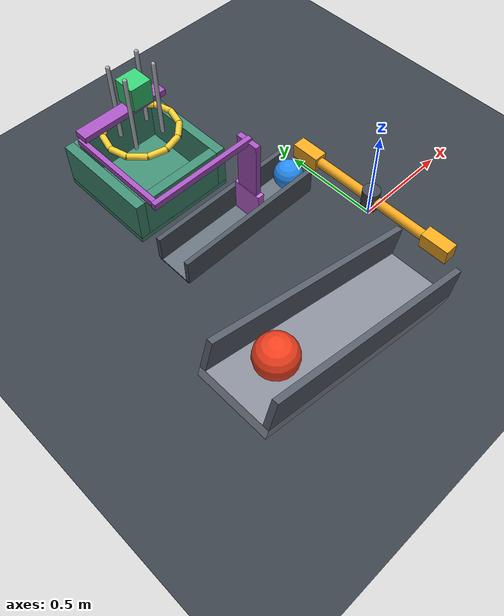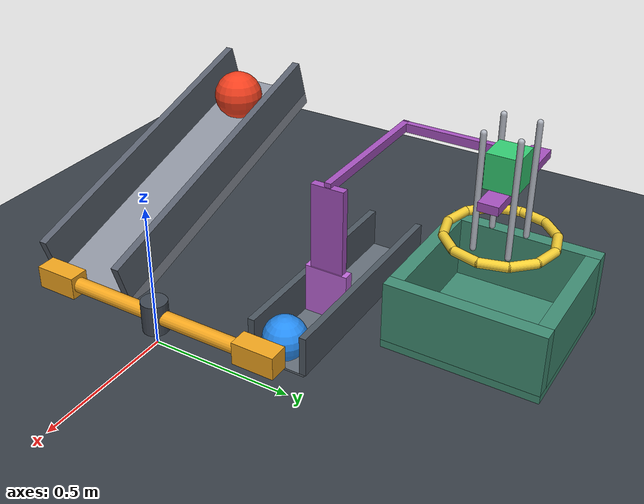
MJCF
<mujoco model="ramp_rotor_latch_drop">
  <compiler angle="radian" autolimits="true"/>
  <option timestep="0.002" gravity="0 0 -9.81" integrator="implicitfast" solver="Newton" iterations="80" cone="elliptic"/>
  <visual>
    <headlight ambient="0.35 0.35 0.35" diffuse="0.7 0.7 0.7"/>
  </visual>

  <worldbody>
    <light name="overhead" pos="-0.5 0 4" dir="0 0 -1"/>
    <camera name="overview" pos="-3.2 -4.2 3.1" xyaxes="0.85 -0.53 0 0.28 0.45 0.85"/>
    <geom name="floor" type="plane" size="0 0 0.1" friction="0.7 0.01 0.012" condim="6" priority="1" rgba="0.22 0.25 0.28 1"/>

    <!-- The initial contact point is one metre uphill from the ramp's lower end. -->
    <body name="ramp" pos="-0.700590 -0.4 0.168429" euler="0 0.30 0">
      <geom name="ramp_deck" type="box" size="0.6 0.18 0.025" friction="0.65 0.003 0.001" condim="6" priority="2" rgba="0.55 0.57 0.62 1"/>
      <geom name="ramp_left_rail" type="box" pos="0 -0.165 0.10" size="0.6 0.015 0.075" friction="0.3 0.002 0.001" condim="6" priority="2" rgba="0.35 0.38 0.43 1"/>
      <geom name="ramp_right_rail" type="box" pos="0 0.165 0.10" size="0.6 0.015 0.075" friction="0.3 0.002 0.001" condim="6" priority="2" rgba="0.35 0.38 0.43 1"/>
    </body>

    <body name="ball1" pos="-1.047262 -0.4 0.401277">
      <freejoint name="ball1_free"/>
      <geom name="ball1_sphere" type="sphere" size="0.095" mass="0.9" friction="0.6 0.003 0.001" condim="6" solref="0.006 1" rgba="0.95 0.25 0.12 1"/>
    </body>

    <!-- Opposite arms transfer the downhill strike into a leftward strike. -->
    <body name="rotor" pos="0 0 0.11">
      <joint name="rotor_hinge" type="hinge" axis="0 0 1" damping="0.035" frictionloss="0.004"/>
      <geom name="rotor_hub" type="cylinder" size="0.045 0.055" mass="0.04" friction="0.5 0.001 0.001" priority="3" rgba="0.25 0.28 0.32 1"/>
      <geom name="rotor_arm" type="capsule" fromto="0 -0.44 0 0 0.44 0" size="0.026" mass="0.25" friction="0.5 0.001 0.001" priority="3" solref="0.005 1" rgba="0.95 0.65 0.12 1"/>
      <geom name="rotor_input_paddle" type="box" pos="0 -0.4 0" size="0.035 0.075 0.04" mass="0.03" friction="0.5 0.001 0.001" priority="3" solref="0.005 1" rgba="0.95 0.65 0.12 1"/>
      <geom name="rotor_output_paddle" type="box" pos="0 0.4 0" size="0.035 0.075 0.04" mass="0.03" friction="0.5 0.001 0.001" priority="3" solref="0.005 1" rgba="0.95 0.65 0.12 1"/>
    </body>

    <body name="ball2_track" pos="0 0 0">
      <geom name="ball2_track_deck" type="box" pos="-0.5 0.4 -0.005" size="0.4 0.1 0.01" friction="0.6 0.002 0.0002" condim="6" priority="4" rgba="0.40 0.44 0.48 1"/>
      <geom name="ball2_track_lower_rail" type="box" pos="-0.5 0.305 0.075" size="0.4 0.012 0.07" friction="0.15 0.001 0.0002" condim="6" priority="4" rgba="0.30 0.34 0.38 1"/>
      <geom name="ball2_track_upper_rail" type="box" pos="-0.5 0.495 0.075" size="0.4 0.012 0.07" friction="0.15 0.001 0.0002" condim="6" priority="4" rgba="0.30 0.34 0.38 1"/>
    </body>

    <body name="ball2" pos="-0.15 0.4 0.0805">
      <freejoint name="ball2_free"/>
      <geom name="ball2_sphere" type="sphere" size="0.075" mass="0.22" friction="0.6 0.002 0.0002" condim="6" solref="0.008 1" rgba="0.15 0.55 0.95 1"/>
    </body>

    <!-- The offset linkage keeps the striker lane clear of the falling payload. -->
    <body name="latch" pos="0 0 0">
      <joint name="latch_slide" type="slide" axis="-1 0 0" range="0 0.43" damping="0.01" frictionloss="0.0015" solreflimit="0.012 1"/>
      <geom name="latch_support" type="box" pos="-0.715 0.9 0.53" size="0.225 0.034 0.015" mass="0.04" friction="0.006 0.001 0.0001" condim="6" priority="5" solref="0.008 1" rgba="0.65 0.32 0.75 1"/>
      <geom name="latch_cross_link" type="box" pos="-0.94 0.65 0.50" size="0.012 0.262 0.016" mass="0.015" friction="0.1 0.001 0.001" rgba="0.65 0.32 0.75 1"/>
      <geom name="latch_long_link" type="box" pos="-0.68 0.4 0.50" size="0.275 0.012 0.016" mass="0.015" friction="0.1 0.001 0.001" rgba="0.65 0.32 0.75 1"/>
      <geom name="latch_mast" type="box" pos="-0.415 0.4 0.30" size="0.014 0.06 0.20" mass="0.02" friction="0.3 0.003 0.003" rgba="0.65 0.32 0.75 1"/>
      <geom name="latch_striker" type="box" pos="-0.415 0.4 0.10" size="0.018 0.078 0.09" mass="0.025" friction="0.6 0.01 0.01" condim="6" priority="5" solref="0.012 1" rgba="0.75 0.40 0.85 1"/>
    </body>

    <body name="block" pos="-0.63 0.9 0.606">
      <freejoint name="block_free"/>
      <geom name="block_payload" type="box" size="0.055 0.055 0.06" mass="0.18" friction="0.5 0.005 0.001" condim="6" solref="0.012 1" rgba="0.20 0.80 0.45 1"/>
    </body>

    <body name="ring" pos="-0.63 0.9 0.365">
      <geom name="ring_segment_01" type="capsule" fromto="0.18 0 0 0.155885 0.09 0" size="0.016" rgba="0.95 0.80 0.20 1"/>
      <geom name="ring_segment_02" type="capsule" fromto="0.155885 0.09 0 0.09 0.155885 0" size="0.016" rgba="0.95 0.80 0.20 1"/>
      <geom name="ring_segment_03" type="capsule" fromto="0.09 0.155885 0 0 0.18 0" size="0.016" rgba="0.95 0.80 0.20 1"/>
      <geom name="ring_segment_04" type="capsule" fromto="0 0.18 0 -0.09 0.155885 0" size="0.016" rgba="0.95 0.80 0.20 1"/>
      <geom name="ring_segment_05" type="capsule" fromto="-0.09 0.155885 0 -0.155885 0.09 0" size="0.016" rgba="0.95 0.80 0.20 1"/>
      <geom name="ring_segment_06" type="capsule" fromto="-0.155885 0.09 0 -0.18 0 0" size="0.016" rgba="0.95 0.80 0.20 1"/>
      <geom name="ring_segment_07" type="capsule" fromto="-0.18 0 0 -0.155885 -0.09 0" size="0.016" rgba="0.95 0.80 0.20 1"/>
      <geom name="ring_segment_08" type="capsule" fromto="-0.155885 -0.09 0 -0.09 -0.155885 0" size="0.016" rgba="0.95 0.80 0.20 1"/>
      <geom name="ring_segment_09" type="capsule" fromto="-0.09 -0.155885 0 0 -0.18 0" size="0.016" rgba="0.95 0.80 0.20 1"/>
      <geom name="ring_segment_10" type="capsule" fromto="0 -0.18 0 0.09 -0.155885 0" size="0.016" rgba="0.95 0.80 0.20 1"/>
      <geom name="ring_segment_11" type="capsule" fromto="0.09 -0.155885 0 0.155885 -0.09 0" size="0.016" rgba="0.95 0.80 0.20 1"/>
      <geom name="ring_segment_12" type="capsule" fromto="0.155885 -0.09 0 0.18 0 0" size="0.016" rgba="0.95 0.80 0.20 1"/>
      <geom name="ring_guide_1" type="capsule" fromto="-0.078 -0.058 -0.02 -0.078 -0.058 0.375" size="0.01" friction="0.03 0.001 0.001" priority="4" rgba="0.70 0.72 0.76 1"/>
      <geom name="ring_guide_2" type="capsule" fromto="-0.078 0.058 -0.02 -0.078 0.058 0.375" size="0.01" friction="0.03 0.001 0.001" priority="4" rgba="0.70 0.72 0.76 1"/>
      <geom name="ring_guide_3" type="capsule" fromto="0.078 -0.058 -0.02 0.078 -0.058 0.375" size="0.01" friction="0.03 0.001 0.001" priority="4" rgba="0.70 0.72 0.76 1"/>
      <geom name="ring_guide_4" type="capsule" fromto="0.078 0.058 -0.02 0.078 0.058 0.375" size="0.01" friction="0.03 0.001 0.001" priority="4" rgba="0.70 0.72 0.76 1"/>
    </body>

    <body name="box" pos="-0.63 0.9 0">
      <geom name="box_bottom" type="box" pos="0 0 0.014" size="0.27 0.27 0.014" friction="0.8 0.01 0.002" condim="6" solref="0.015 1" rgba="0.25 0.55 0.45 1"/>
      <geom name="box_left_wall" type="box" pos="-0.245 0 0.135" size="0.025 0.27 0.11" friction="0.6 0.005 0.001" solref="0.015 1" rgba="0.25 0.55 0.45 1"/>
      <geom name="box_right_wall" type="box" pos="0.245 0 0.135" size="0.025 0.27 0.11" friction="0.6 0.005 0.001" solref="0.015 1" rgba="0.25 0.55 0.45 1"/>
      <geom name="box_front_wall" type="box" pos="0 -0.245 0.135" size="0.22 0.025 0.11" friction="0.6 0.005 0.001" solref="0.015 1" rgba="0.25 0.55 0.45 1"/>
      <geom name="box_back_wall" type="box" pos="0 0.245 0.135" size="0.22 0.025 0.11" friction="0.6 0.005 0.001" solref="0.015 1" rgba="0.25 0.55 0.45 1"/>
    </body>
  </worldbody>

  <keyframe>
    <key name="start"/>
  </keyframe>
</mujoco>
